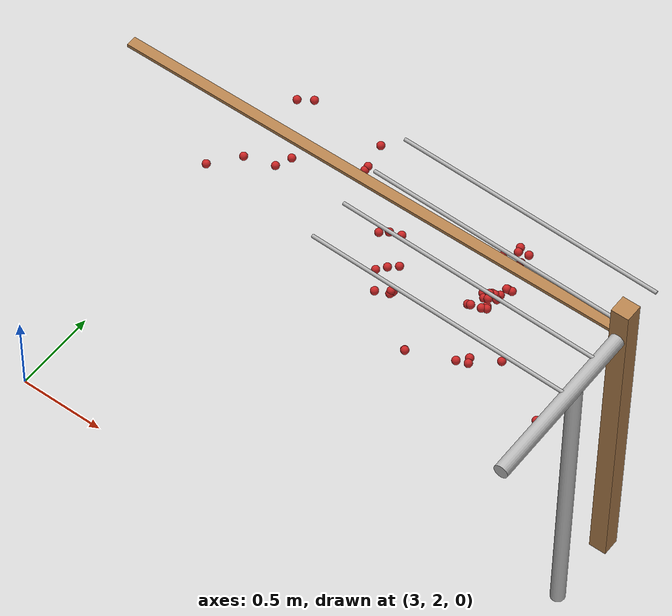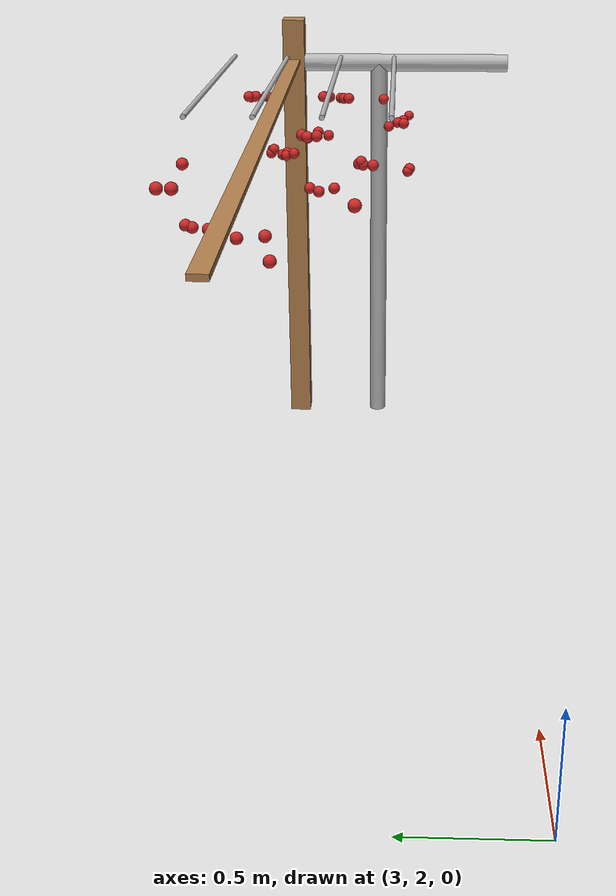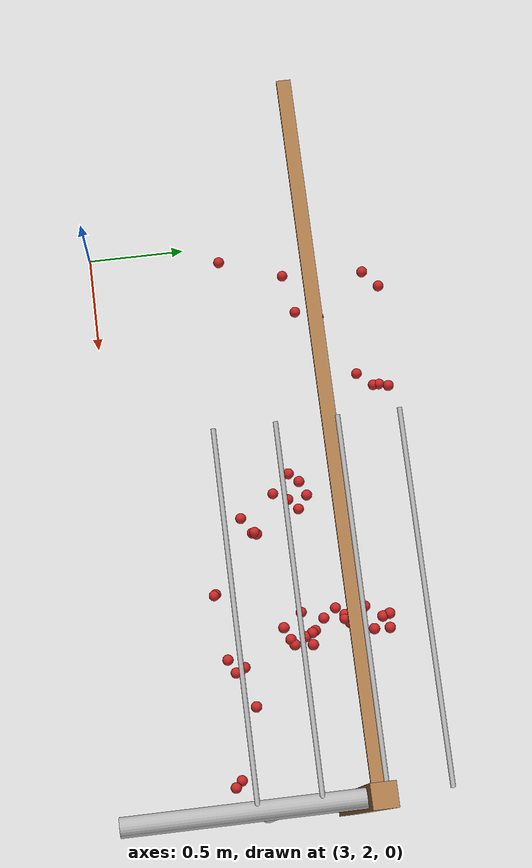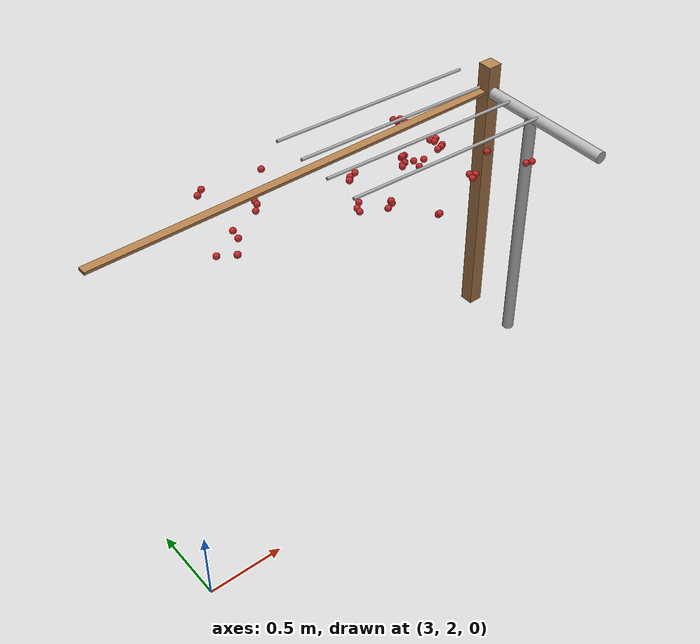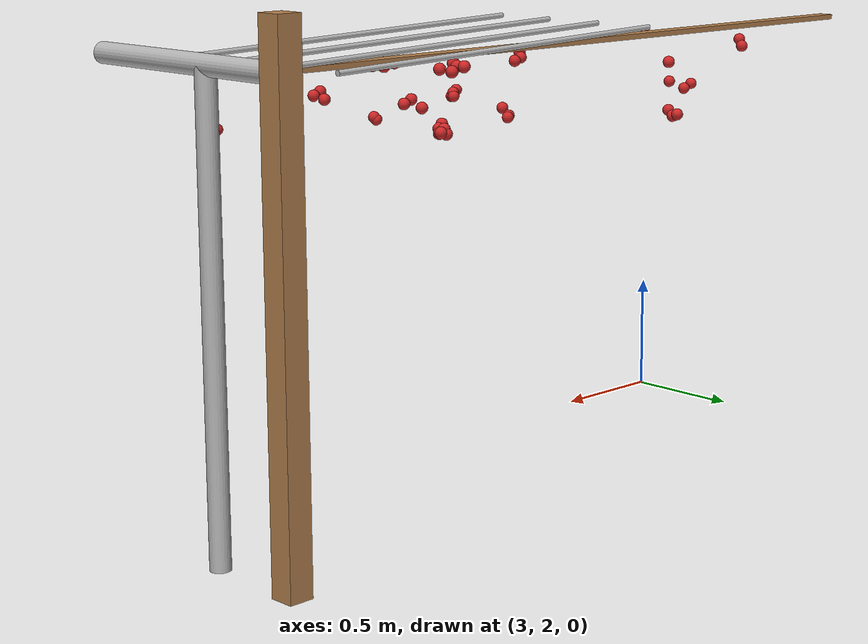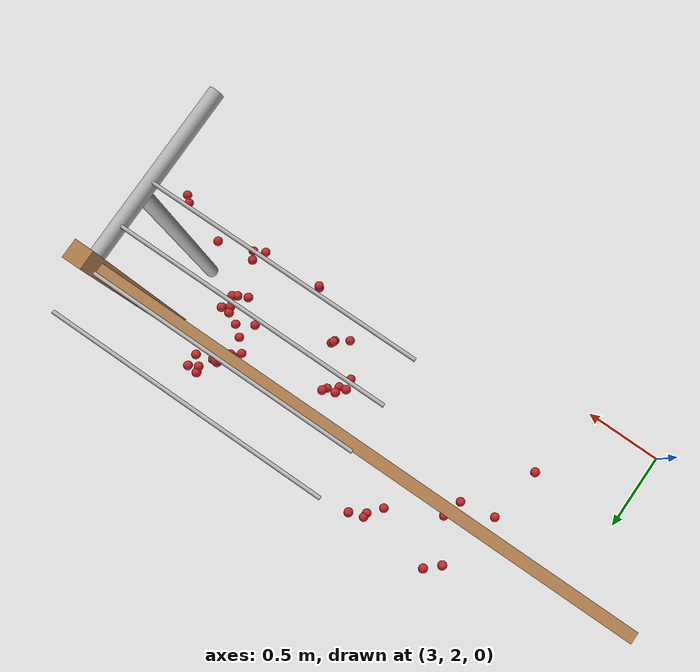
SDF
<sdf version="1.4">
 <model name="pergola">
  <include><name>post_15</name><pose>6.0 3.0 0 0 0 0</pose><uri>model://post</uri></include>
  <link name="beam_9">
   <pose>4.5 3.0 1.81 0 0 0</pose>
   <collision name="collision"><geometry><box><size>3.0 0.06 0.02</size></box></geometry></collision>
   <visual name="visual">
    <geometry><box><size>3.0 0.06 0.02</size></box></geometry>
    <material>
     <script>
      <uri>model://post/materials/scripts</uri>
      <uri>model://post/materials/textures</uri>
      <name>Post/Wood</name>
     </script>
    </material>
   </visual>
   <inertial>
    <mass>5</mass>
    <inertia>
     <ixx>0.0016666666666666668</ixx>
     <ixy>0.0</ixy>
     <ixz>0.0</ixz>
     <iyy>3.7515</iyy>
     <iyz>0.0</iyz>
     <izz>3.750166666666667</izz>
    </inertia>
   </inertial>
  </link>
  <include><name>tree_12</name><pose>6.0 2.6 0 0 0 0</pose><uri>model://tree_trunk</uri></include>
  <link name="baseBranch_12">
   <pose>6.0 2.5 1.8 1.5707963267948966 0 0</pose>
   <collision name="collision">
    <geometry><cylinder><radius>0.04</radius><length>1.0</length></cylinder></geometry>
   </collision>
   <visual name="visual">
    <geometry><cylinder><radius>0.04</radius><length>1.0</length></cylinder></geometry>
    <material>
     <script>
      <uri>model://tree_trunk/materials/scripts</uri>
      <uri>model://tree_trunk/materials/textures</uri>
      <name>Tree/Bark</name>
     </script>
    </material>
   </visual>
   <inertial>
    <mass>10</mass>
    <inertia>
     <ixx>0.8373333333333332</ixx>
     <ixy>0.0</ixy>
     <ixz>0.0</ixz>
     <iyy>0.8373333333333332</iyy>
     <iyz>0.0</iyz>
     <izz>0.008</izz>
    </inertia>
   </inertial>
  </link>
  <link name="vine_61">
   <pose>5.25 2.53 1.85 0 -1.5374753309166493 0</pose>
   <collision name="collision">
    <geometry><cylinder><radius>0.01</radius><length>1.5008331019803633</length></cylinder></geometry>
   </collision>
   <visual name="visual">
    <geometry><cylinder><radius>0.01</radius><length>1.5008331019803633</length></cylinder></geometry>
    <material>
     <script>
      <uri>model://tree_trunk/materials/scripts</uri>
      <uri>model://tree_trunk/materials/textures</uri>
      <name>Tree/Bark</name>
     </script>
    </material>
   </visual>
   <inertial>
    <mass>5</mass>
    <inertia>
     <ixx>0.9386666666666668</ixx>
     <ixy>0.0</ixy>
     <ixz>0.0</ixz>
     <iyy>0.9386666666666668</iyy>
     <iyz>0.0</iyz>
     <izz>0.00025</izz>
    </inertia>
   </inertial>
  </link>
  <link name="vine_63">
   <pose>5.25 2.78 1.85 0 -1.5374753309166493 0</pose>
   <collision name="collision">
    <geometry><cylinder><radius>0.01</radius><length>1.5008331019803633</length></cylinder></geometry>
   </collision>
   <visual name="visual">
    <geometry><cylinder><radius>0.01</radius><length>1.5008331019803633</length></cylinder></geometry>
    <material>
     <script>
      <uri>model://tree_trunk/materials/scripts</uri>
      <uri>model://tree_trunk/materials/textures</uri>
      <name>Tree/Bark</name>
     </script>
    </material>
   </visual>
   <inertial>
    <mass>5</mass>
    <inertia>
     <ixx>0.9386666666666668</ixx>
     <ixy>0.0</ixy>
     <ixz>0.0</ixz>
     <iyy>0.9386666666666668</iyy>
     <iyz>0.0</iyz>
     <izz>0.00025</izz>
    </inertia>
   </inertial>
  </link>
  <link name="vine_65">
   <pose>5.25 3.03 1.85 0 -1.5374753309166493 0</pose>
   <collision name="collision">
    <geometry><cylinder><radius>0.01</radius><length>1.5008331019803633</length></cylinder></geometry>
   </collision>
   <visual name="visual">
    <geometry><cylinder><radius>0.01</radius><length>1.5008331019803633</length></cylinder></geometry>
    <material>
     <script>
      <uri>model://tree_trunk/materials/scripts</uri>
      <uri>model://tree_trunk/materials/textures</uri>
      <name>Tree/Bark</name>
     </script>
    </material>
   </visual>
   <inertial>
    <mass>5</mass>
    <inertia>
     <ixx>0.9386666666666668</ixx>
     <ixy>0.0</ixy>
     <ixz>0.0</ixz>
     <iyy>0.9386666666666668</iyy>
     <iyz>0.0</iyz>
     <izz>0.00025</izz>
    </inertia>
   </inertial>
  </link>
  <link name="vine_67">
   <pose>5.25 3.28 1.85 0 -1.5374753309166493 0</pose>
   <collision name="collision">
    <geometry><cylinder><radius>0.01</radius><length>1.5008331019803633</length></cylinder></geometry>
   </collision>
   <visual name="visual">
    <geometry><cylinder><radius>0.01</radius><length>1.5008331019803633</length></cylinder></geometry>
    <material>
     <script>
      <uri>model://tree_trunk/materials/scripts</uri>
      <uri>model://tree_trunk/materials/textures</uri>
      <name>Tree/Bark</name>
     </script>
    </material>
   </visual>
   <inertial>
    <mass>5</mass>
    <inertia>
     <ixx>0.9386666666666668</ixx>
     <ixy>0.0</ixy>
     <ixz>0.0</ixz>
     <iyy>0.9386666666666668</iyy>
     <iyz>0.0</iyz>
     <izz>0.00025</izz>
    </inertia>
   </inertial>
  </link>
  <link name="fruit_7">
   <pose>5.310056194776669 2.716071899829117 1.7745085929713715 0 0 0</pose>
   <collision name="fruit_collision_7"><geometry><sphere><radius>0.022</radius></sphere></geometry></collision>
   <visual name="visual">
    <geometry><sphere><radius>0.022</radius></sphere></geometry>
    <material><script><name>Gazebo/Red</name></script></material>
   </visual>
   <inertial>
    <mass>0.05</mass>
    <inertia>
     <ixx>9.679999999999999e-06</ixx>
     <ixy>0.0</ixy>
     <ixz>0.0</ixz>
     <iyy>9.679999999999999e-06</iyy>
     <iyz>0.0</iyz>
     <izz>9.679999999999999e-06</izz>
    </inertia>
   </inertial>
   <sensor name="fruit_contact_7" type="contact">
    <plugin name="contact_plugin_7" filename="libcontact_plugin.so"/>
    <contact><collision>fruit_collision_7</collision><topic>fruit_contact_topic_7</topic></contact>
   </sensor>
  </link>
  <link name="fruit_10">
   <pose>4.720756318062982 2.7491571841309956 1.551142887513737 0 0 0</pose>
   <collision name="fruit_collision_10"><geometry><sphere><radius>0.022</radius></sphere></geometry></collision>
   <visual name="visual">
    <geometry><sphere><radius>0.022</radius></sphere></geometry>
    <material><script><name>Gazebo/Red</name></script></material>
   </visual>
   <inertial>
    <mass>0.05</mass>
    <inertia>
     <ixx>9.679999999999999e-06</ixx>
     <ixy>0.0</ixy>
     <ixz>0.0</ixz>
     <iyy>9.679999999999999e-06</iyy>
     <iyz>0.0</iyz>
     <izz>9.679999999999999e-06</izz>
    </inertia>
   </inertial>
   <sensor name="fruit_contact_10" type="contact">
    <plugin name="contact_plugin_10" filename="libcontact_plugin.so"/>
    <contact><collision>fruit_collision_10</collision><topic>fruit_contact_topic_10</topic></contact>
   </sensor>
  </link>
  <link name="fruit_19">
   <pose>5.263690984635094 3.042597183606115 1.783906064949114 0 0 0</pose>
   <collision name="fruit_collision_19"><geometry><sphere><radius>0.022</radius></sphere></geometry></collision>
   <visual name="visual">
    <geometry><sphere><radius>0.022</radius></sphere></geometry>
    <material><script><name>Gazebo/Red</name></script></material>
   </visual>
   <inertial>
    <mass>0.05</mass>
    <inertia>
     <ixx>9.679999999999999e-06</ixx>
     <ixy>0.0</ixy>
     <ixz>0.0</ixz>
     <iyy>9.679999999999999e-06</iyy>
     <iyz>0.0</iyz>
     <izz>9.679999999999999e-06</izz>
    </inertia>
   </inertial>
   <sensor name="fruit_contact_19" type="contact">
    <plugin name="contact_plugin_19" filename="libcontact_plugin.so"/>
    <contact><collision>fruit_collision_19</collision><topic>fruit_contact_topic_19</topic></contact>
   </sensor>
  </link>
  <link name="fruit_28">
   <pose>4.822620042117694 2.602460859145559 1.6158759317331917 0 0 0</pose>
   <collision name="fruit_collision_28"><geometry><sphere><radius>0.022</radius></sphere></geometry></collision>
   <visual name="visual">
    <geometry><sphere><radius>0.022</radius></sphere></geometry>
    <material><script><name>Gazebo/Red</name></script></material>
   </visual>
   <inertial>
    <mass>0.05</mass>
    <inertia>
     <ixx>9.679999999999999e-06</ixx>
     <ixy>0.0</ixy>
     <ixz>0.0</ixz>
     <iyy>9.679999999999999e-06</iyy>
     <iyz>0.0</iyz>
     <izz>9.679999999999999e-06</izz>
    </inertia>
   </inertial>
   <sensor name="fruit_contact_28" type="contact">
    <plugin name="contact_plugin_28" filename="libcontact_plugin.so"/>
    <contact><collision>fruit_collision_28</collision><topic>fruit_contact_topic_28</topic></contact>
   </sensor>
  </link>
  <link name="fruit_62">
   <pose>5.226416432970439 2.9447532875685996 1.5572032718588782 0 0 0</pose>
   <collision name="fruit_collision_62"><geometry><sphere><radius>0.022</radius></sphere></geometry></collision>
   <visual name="visual">
    <geometry><sphere><radius>0.022</radius></sphere></geometry>
    <material><script><name>Gazebo/Red</name></script></material>
   </visual>
   <inertial>
    <mass>0.05</mass>
    <inertia>
     <ixx>9.679999999999999e-06</ixx>
     <ixy>0.0</ixy>
     <ixz>0.0</ixz>
     <iyy>9.679999999999999e-06</iyy>
     <iyz>0.0</iyz>
     <izz>9.679999999999999e-06</izz>
    </inertia>
   </inertial>
   <sensor name="fruit_contact_62" type="contact">
    <plugin name="contact_plugin_62" filename="libcontact_plugin.so"/>
    <contact><collision>fruit_collision_62</collision><topic>fruit_contact_topic_62</topic></contact>
   </sensor>
  </link>
  <link name="fruit_72">
   <pose>4.691600891130706 2.811188774952305 1.7617841134088388 0 0 0</pose>
   <collision name="fruit_collision_72"><geometry><sphere><radius>0.022</radius></sphere></geometry></collision>
   <visual name="visual">
    <geometry><sphere><radius>0.022</radius></sphere></geometry>
    <material><script><name>Gazebo/Red</name></script></material>
   </visual>
   <inertial>
    <mass>0.05</mass>
    <inertia>
     <ixx>9.679999999999999e-06</ixx>
     <ixy>0.0</ixy>
     <ixz>0.0</ixz>
     <iyy>9.679999999999999e-06</iyy>
     <iyz>0.0</iyz>
     <izz>9.679999999999999e-06</izz>
    </inertia>
   </inertial>
   <sensor name="fruit_contact_72" type="contact">
    <plugin name="contact_plugin_72" filename="libcontact_plugin.so"/>
    <contact><collision>fruit_collision_72</collision><topic>fruit_contact_topic_72</topic></contact>
   </sensor>
  </link>
  <link name="fruit_103">
   <pose>5.238014310913283 2.79885047076949 1.6330371551691434 0 0 0</pose>
   <collision name="fruit_collision_103"><geometry><sphere><radius>0.022</radius></sphere></geometry></collision>
   <visual name="visual">
    <geometry><sphere><radius>0.022</radius></sphere></geometry>
    <material><script><name>Gazebo/Red</name></script></material>
   </visual>
   <inertial>
    <mass>0.05</mass>
    <inertia>
     <ixx>9.679999999999999e-06</ixx>
     <ixy>0.0</ixy>
     <ixz>0.0</ixz>
     <iyy>9.679999999999999e-06</iyy>
     <iyz>0.0</iyz>
     <izz>9.679999999999999e-06</izz>
    </inertia>
   </inertial>
   <sensor name="fruit_contact_103" type="contact">
    <plugin name="contact_plugin_103" filename="libcontact_plugin.so"/>
    <contact><collision>fruit_collision_103</collision><topic>fruit_contact_topic_103</topic></contact>
   </sensor>
  </link>
  <link name="fruit_109">
   <pose>3.880243382284092 3.2193864037321402 1.7860987356283933 0 0 0</pose>
   <collision name="fruit_collision_109"><geometry><sphere><radius>0.022</radius></sphere></geometry></collision>
   <visual name="visual">
    <geometry><sphere><radius>0.022</radius></sphere></geometry>
    <material><script><name>Gazebo/Red</name></script></material>
   </visual>
   <inertial>
    <mass>0.05</mass>
    <inertia>
     <ixx>9.679999999999999e-06</ixx>
     <ixy>0.0</ixy>
     <ixz>0.0</ixz>
     <iyy>9.679999999999999e-06</iyy>
     <iyz>0.0</iyz>
     <izz>9.679999999999999e-06</izz>
    </inertia>
   </inertial>
   <sensor name="fruit_contact_109" type="contact">
    <plugin name="contact_plugin_109" filename="libcontact_plugin.so"/>
    <contact><collision>fruit_collision_109</collision><topic>fruit_contact_topic_109</topic></contact>
   </sensor>
  </link>
  <link name="fruit_110">
   <pose>5.396791758302506 2.4828366591025923 1.6486892742449508 0 0 0</pose>
   <collision name="fruit_collision_110"><geometry><sphere><radius>0.022</radius></sphere></geometry></collision>
   <visual name="visual">
    <geometry><sphere><radius>0.022</radius></sphere></geometry>
    <material><script><name>Gazebo/Red</name></script></material>
   </visual>
   <inertial>
    <mass>0.05</mass>
    <inertia>
     <ixx>9.679999999999999e-06</ixx>
     <ixy>0.0</ixy>
     <ixz>0.0</ixz>
     <iyy>9.679999999999999e-06</iyy>
     <iyz>0.0</iyz>
     <izz>9.679999999999999e-06</izz>
    </inertia>
   </inertial>
   <sensor name="fruit_contact_110" type="contact">
    <plugin name="contact_plugin_110" filename="libcontact_plugin.so"/>
    <contact><collision>fruit_collision_110</collision><topic>fruit_contact_topic_110</topic></contact>
   </sensor>
  </link>
  <link name="fruit_118">
   <pose>4.240601683592925 3.1665870681076083 1.536878968741413 0 0 0</pose>
   <collision name="fruit_collision_118"><geometry><sphere><radius>0.022</radius></sphere></geometry></collision>
   <visual name="visual">
    <geometry><sphere><radius>0.022</radius></sphere></geometry>
    <material><script><name>Gazebo/Red</name></script></material>
   </visual>
   <inertial>
    <mass>0.05</mass>
    <inertia>
     <ixx>9.679999999999999e-06</ixx>
     <ixy>0.0</ixy>
     <ixz>0.0</ixz>
     <iyy>9.679999999999999e-06</iyy>
     <iyz>0.0</iyz>
     <izz>9.679999999999999e-06</izz>
    </inertia>
   </inertial>
   <sensor name="fruit_contact_118" type="contact">
    <plugin name="contact_plugin_118" filename="libcontact_plugin.so"/>
    <contact><collision>fruit_collision_118</collision><topic>fruit_contact_topic_118</topic></contact>
   </sensor>
  </link>
  <link name="fruit_121">
   <pose>3.9603385510509983 2.9360979225763786 1.6048226936220926 0 0 0</pose>
   <collision name="fruit_collision_121"><geometry><sphere><radius>0.022</radius></sphere></geometry></collision>
   <visual name="visual">
    <geometry><sphere><radius>0.022</radius></sphere></geometry>
    <material><script><name>Gazebo/Red</name></script></material>
   </visual>
   <inertial>
    <mass>0.05</mass>
    <inertia>
     <ixx>9.679999999999999e-06</ixx>
     <ixy>0.0</ixy>
     <ixz>0.0</ixz>
     <iyy>9.679999999999999e-06</iyy>
     <iyz>0.0</iyz>
     <izz>9.679999999999999e-06</izz>
    </inertia>
   </inertial>
   <sensor name="fruit_contact_121" type="contact">
    <plugin name="contact_plugin_121" filename="libcontact_plugin.so"/>
    <contact><collision>fruit_collision_121</collision><topic>fruit_contact_topic_121</topic></contact>
   </sensor>
  </link>
  <link name="fruit_131">
   <pose>4.364439687496429 3.267103218653195 1.737242778188225 0 0 0</pose>
   <collision name="fruit_collision_131"><geometry><sphere><radius>0.022</radius></sphere></geometry></collision>
   <visual name="visual">
    <geometry><sphere><radius>0.022</radius></sphere></geometry>
    <material><script><name>Gazebo/Red</name></script></material>
   </visual>
   <inertial>
    <mass>0.05</mass>
    <inertia>
     <ixx>9.679999999999999e-06</ixx>
     <ixy>0.0</ixy>
     <ixz>0.0</ixz>
     <iyy>9.679999999999999e-06</iyy>
     <iyz>0.0</iyz>
     <izz>9.679999999999999e-06</izz>
    </inertia>
   </inertial>
   <sensor name="fruit_contact_131" type="contact">
    <plugin name="contact_plugin_131" filename="libcontact_plugin.so"/>
    <contact><collision>fruit_collision_131</collision><topic>fruit_contact_topic_131</topic></contact>
   </sensor>
  </link>
  <link name="fruit_134">
   <pose>5.599396539561008 2.5730942747967958 1.710823450412586 0 0 0</pose>
   <collision name="fruit_collision_134"><geometry><sphere><radius>0.022</radius></sphere></geometry></collision>
   <visual name="visual">
    <geometry><sphere><radius>0.022</radius></sphere></geometry>
    <material><script><name>Gazebo/Red</name></script></material>
   </visual>
   <inertial>
    <mass>0.05</mass>
    <inertia>
     <ixx>9.679999999999999e-06</ixx>
     <ixy>0.0</ixy>
     <ixz>0.0</ixz>
     <iyy>9.679999999999999e-06</iyy>
     <iyz>0.0</iyz>
     <izz>9.679999999999999e-06</izz>
    </inertia>
   </inertial>
   <sensor name="fruit_contact_134" type="contact">
    <plugin name="contact_plugin_134" filename="libcontact_plugin.so"/>
    <contact><collision>fruit_collision_134</collision><topic>fruit_contact_topic_134</topic></contact>
   </sensor>
  </link>
  <link name="fruit_164">
   <pose>5.317874525641369 2.847077839039408 1.6280620795540357 0 0 0</pose>
   <collision name="fruit_collision_164"><geometry><sphere><radius>0.022</radius></sphere></geometry></collision>
   <visual name="visual">
    <geometry><sphere><radius>0.022</radius></sphere></geometry>
    <material><script><name>Gazebo/Red</name></script></material>
   </visual>
   <inertial>
    <mass>0.05</mass>
    <inertia>
     <ixx>9.679999999999999e-06</ixx>
     <ixy>0.0</ixy>
     <ixz>0.0</ixz>
     <iyy>9.679999999999999e-06</iyy>
     <iyz>0.0</iyz>
     <izz>9.679999999999999e-06</izz>
    </inertia>
   </inertial>
   <sensor name="fruit_contact_164" type="contact">
    <plugin name="contact_plugin_164" filename="libcontact_plugin.so"/>
    <contact><collision>fruit_collision_164</collision><topic>fruit_contact_topic_164</topic></contact>
   </sensor>
  </link>
  <link name="fruit_185">
   <pose>5.302775911525276 3.036562416127382 1.5552973422926701 0 0 0</pose>
   <collision name="fruit_collision_185"><geometry><sphere><radius>0.022</radius></sphere></geometry></collision>
   <visual name="visual">
    <geometry><sphere><radius>0.022</radius></sphere></geometry>
    <material><script><name>Gazebo/Red</name></script></material>
   </visual>
   <inertial>
    <mass>0.05</mass>
    <inertia>
     <ixx>9.679999999999999e-06</ixx>
     <ixy>0.0</ixy>
     <ixz>0.0</ixz>
     <iyy>9.679999999999999e-06</iyy>
     <iyz>0.0</iyz>
     <izz>9.679999999999999e-06</izz>
    </inertia>
   </inertial>
   <sensor name="fruit_contact_185" type="contact">
    <plugin name="contact_plugin_185" filename="libcontact_plugin.so"/>
    <contact><collision>fruit_collision_185</collision><topic>fruit_contact_topic_185</topic></contact>
   </sensor>
  </link>
  <link name="fruit_190">
   <pose>4.792861836305501 2.8484947354084476 1.5307977857727029 0 0 0</pose>
   <collision name="fruit_collision_190"><geometry><sphere><radius>0.022</radius></sphere></geometry></collision>
   <visual name="visual">
    <geometry><sphere><radius>0.022</radius></sphere></geometry>
    <material><script><name>Gazebo/Red</name></script></material>
   </visual>
   <inertial>
    <mass>0.05</mass>
    <inertia>
     <ixx>9.679999999999999e-06</ixx>
     <ixy>0.0</ixy>
     <ixz>0.0</ixz>
     <iyy>9.679999999999999e-06</iyy>
     <iyz>0.0</iyz>
     <izz>9.679999999999999e-06</izz>
    </inertia>
   </inertial>
   <sensor name="fruit_contact_190" type="contact">
    <plugin name="contact_plugin_190" filename="libcontact_plugin.so"/>
    <contact><collision>fruit_collision_190</collision><topic>fruit_contact_topic_190</topic></contact>
   </sensor>
  </link>
  <link name="fruit_194">
   <pose>5.291805537602034 2.9994950234278885 1.5352478592965382 0 0 0</pose>
   <collision name="fruit_collision_194"><geometry><sphere><radius>0.022</radius></sphere></geometry></collision>
   <visual name="visual">
    <geometry><sphere><radius>0.022</radius></sphere></geometry>
    <material><script><name>Gazebo/Red</name></script></material>
   </visual>
   <inertial>
    <mass>0.05</mass>
    <inertia>
     <ixx>9.679999999999999e-06</ixx>
     <ixy>0.0</ixy>
     <ixz>0.0</ixz>
     <iyy>9.679999999999999e-06</iyy>
     <iyz>0.0</iyz>
     <izz>9.679999999999999e-06</izz>
    </inertia>
   </inertial>
   <sensor name="fruit_contact_194" type="contact">
    <plugin name="contact_plugin_194" filename="libcontact_plugin.so"/>
    <contact><collision>fruit_collision_194</collision><topic>fruit_contact_topic_194</topic></contact>
   </sensor>
  </link>
  <link name="fruit_199">
   <pose>5.871536436383011 2.483816045851661 1.5558065760525757 0 0 0</pose>
   <collision name="fruit_collision_199"><geometry><sphere><radius>0.022</radius></sphere></geometry></collision>
   <visual name="visual">
    <geometry><sphere><radius>0.022</radius></sphere></geometry>
    <material><script><name>Gazebo/Red</name></script></material>
   </visual>
   <inertial>
    <mass>0.05</mass>
    <inertia>
     <ixx>9.679999999999999e-06</ixx>
     <ixy>0.0</ixy>
     <ixz>0.0</ixz>
     <iyy>9.679999999999999e-06</iyy>
     <iyz>0.0</iyz>
     <izz>9.679999999999999e-06</izz>
    </inertia>
   </inertial>
   <sensor name="fruit_contact_199" type="contact">
    <plugin name="contact_plugin_199" filename="libcontact_plugin.so"/>
    <contact><collision>fruit_collision_199</collision><topic>fruit_contact_topic_199</topic></contact>
   </sensor>
  </link>
  <link name="fruit_200">
   <pose>4.748074316985864 2.8102062385526025 1.5297393083257336 0 0 0</pose>
   <collision name="fruit_collision_200"><geometry><sphere><radius>0.022</radius></sphere></geometry></collision>
   <visual name="visual">
    <geometry><sphere><radius>0.022</radius></sphere></geometry>
    <material><script><name>Gazebo/Red</name></script></material>
   </visual>
   <inertial>
    <mass>0.05</mass>
    <inertia>
     <ixx>9.679999999999999e-06</ixx>
     <ixy>0.0</ixy>
     <ixz>0.0</ixz>
     <iyy>9.679999999999999e-06</iyy>
     <iyz>0.0</iyz>
     <izz>9.679999999999999e-06</izz>
    </inertia>
   </inertial>
   <sensor name="fruit_contact_200" type="contact">
    <plugin name="contact_plugin_200" filename="libcontact_plugin.so"/>
    <contact><collision>fruit_collision_200</collision><topic>fruit_contact_topic_200</topic></contact>
   </sensor>
  </link>
  <link name="fruit_209">
   <pose>3.784397428421382 2.9040283665213384 1.5793116071352606 0 0 0</pose>
   <collision name="fruit_collision_209"><geometry><sphere><radius>0.022</radius></sphere></geometry></collision>
   <visual name="visual">
    <geometry><sphere><radius>0.022</radius></sphere></geometry>
    <material><script><name>Gazebo/Red</name></script></material>
   </visual>
   <inertial>
    <mass>0.05</mass>
    <inertia>
     <ixx>9.679999999999999e-06</ixx>
     <ixy>0.0</ixy>
     <ixz>0.0</ixz>
     <iyy>9.679999999999999e-06</iyy>
     <iyz>0.0</iyz>
     <izz>9.679999999999999e-06</izz>
    </inertia>
   </inertial>
   <sensor name="fruit_contact_209" type="contact">
    <plugin name="contact_plugin_209" filename="libcontact_plugin.so"/>
    <contact><collision>fruit_collision_209</collision><topic>fruit_contact_topic_209</topic></contact>
   </sensor>
  </link>
  <link name="fruit_229">
   <pose>5.380286222599372 2.7520339911911273 1.7610701405919564 0 0 0</pose>
   <collision name="fruit_collision_229"><geometry><sphere><radius>0.022</radius></sphere></geometry></collision>
   <visual name="visual">
    <geometry><sphere><radius>0.022</radius></sphere></geometry>
    <material><script><name>Gazebo/Red</name></script></material>
   </visual>
   <inertial>
    <mass>0.05</mass>
    <inertia>
     <ixx>9.679999999999999e-06</ixx>
     <ixy>0.0</ixy>
     <ixz>0.0</ixz>
     <iyy>9.679999999999999e-06</iyy>
     <iyz>0.0</iyz>
     <izz>9.679999999999999e-06</izz>
    </inertia>
   </inertial>
   <sensor name="fruit_contact_229" type="contact">
    <plugin name="contact_plugin_229" filename="libcontact_plugin.so"/>
    <contact><collision>fruit_collision_229</collision><topic>fruit_contact_topic_229</topic></contact>
   </sensor>
  </link>
  <link name="fruit_242">
   <pose>5.272971332526434 2.9776495994654777 1.5484621272415617 0 0 0</pose>
   <collision name="fruit_collision_242"><geometry><sphere><radius>0.022</radius></sphere></geometry></collision>
   <visual name="visual">
    <geometry><sphere><radius>0.022</radius></sphere></geometry>
    <material><script><name>Gazebo/Red</name></script></material>
   </visual>
   <inertial>
    <mass>0.05</mass>
    <inertia>
     <ixx>9.679999999999999e-06</ixx>
     <ixy>0.0</ixy>
     <ixz>0.0</ixz>
     <iyy>9.679999999999999e-06</iyy>
     <iyz>0.0</iyz>
     <izz>9.679999999999999e-06</izz>
    </inertia>
   </inertial>
   <sensor name="fruit_contact_242" type="contact">
    <plugin name="contact_plugin_242" filename="libcontact_plugin.so"/>
    <contact><collision>fruit_collision_242</collision><topic>fruit_contact_topic_242</topic></contact>
   </sensor>
  </link>
  <link name="fruit_256">
   <pose>4.783436596513821 2.875062084803756 1.7433912802366311 0 0 0</pose>
   <collision name="fruit_collision_256"><geometry><sphere><radius>0.022</radius></sphere></geometry></collision>
   <visual name="visual">
    <geometry><sphere><radius>0.022</radius></sphere></geometry>
    <material><script><name>Gazebo/Red</name></script></material>
   </visual>
   <inertial>
    <mass>0.05</mass>
    <inertia>
     <ixx>9.679999999999999e-06</ixx>
     <ixy>0.0</ixy>
     <ixz>0.0</ixz>
     <iyy>9.679999999999999e-06</iyy>
     <iyz>0.0</iyz>
     <izz>9.679999999999999e-06</izz>
    </inertia>
   </inertial>
   <sensor name="fruit_contact_256" type="contact">
    <plugin name="contact_plugin_256" filename="libcontact_plugin.so"/>
    <contact><collision>fruit_collision_256</collision><topic>fruit_contact_topic_256</topic></contact>
   </sensor>
  </link>
  <link name="fruit_262">
   <pose>4.885564875710787 2.642961889764723 1.6007752074218475 0 0 0</pose>
   <collision name="fruit_collision_262"><geometry><sphere><radius>0.022</radius></sphere></geometry></collision>
   <visual name="visual">
    <geometry><sphere><radius>0.022</radius></sphere></geometry>
    <material><script><name>Gazebo/Red</name></script></material>
   </visual>
   <inertial>
    <mass>0.05</mass>
    <inertia>
     <ixx>9.679999999999999e-06</ixx>
     <ixy>0.0</ixy>
     <ixz>0.0</ixz>
     <iyy>9.679999999999999e-06</iyy>
     <iyz>0.0</iyz>
     <izz>9.679999999999999e-06</izz>
    </inertia>
   </inertial>
   <sensor name="fruit_contact_262" type="contact">
    <plugin name="contact_plugin_262" filename="libcontact_plugin.so"/>
    <contact><collision>fruit_collision_262</collision><topic>fruit_contact_topic_262</topic></contact>
   </sensor>
  </link>
  <link name="fruit_279">
   <pose>4.294405447525719 3.2317779121280577 1.5252249771789512 0 0 0</pose>
   <collision name="fruit_collision_279"><geometry><sphere><radius>0.022</radius></sphere></geometry></collision>
   <visual name="visual">
    <geometry><sphere><radius>0.022</radius></sphere></geometry>
    <material><script><name>Gazebo/Red</name></script></material>
   </visual>
   <inertial>
    <mass>0.05</mass>
    <inertia>
     <ixx>9.679999999999999e-06</ixx>
     <ixy>0.0</ixy>
     <ixz>0.0</ixz>
     <iyy>9.679999999999999e-06</iyy>
     <iyz>0.0</iyz>
     <izz>9.679999999999999e-06</izz>
    </inertia>
   </inertial>
   <sensor name="fruit_contact_279" type="contact">
    <plugin name="contact_plugin_279" filename="libcontact_plugin.so"/>
    <contact><collision>fruit_collision_279</collision><topic>fruit_contact_topic_279</topic></contact>
   </sensor>
  </link>
  <link name="fruit_280">
   <pose>5.354516771319723 2.798243314818788 1.770972884949798 0 0 0</pose>
   <collision name="fruit_collision_280"><geometry><sphere><radius>0.022</radius></sphere></geometry></collision>
   <visual name="visual">
    <geometry><sphere><radius>0.022</radius></sphere></geometry>
    <material><script><name>Gazebo/Red</name></script></material>
   </visual>
   <inertial>
    <mass>0.05</mass>
    <inertia>
     <ixx>9.679999999999999e-06</ixx>
     <ixy>0.0</ixy>
     <ixz>0.0</ixz>
     <iyy>9.679999999999999e-06</iyy>
     <iyz>0.0</iyz>
     <izz>9.679999999999999e-06</izz>
    </inertia>
   </inertial>
   <sensor name="fruit_contact_280" type="contact">
    <plugin name="contact_plugin_280" filename="libcontact_plugin.so"/>
    <contact><collision>fruit_collision_280</collision><topic>fruit_contact_topic_280</topic></contact>
   </sensor>
  </link>
  <link name="fruit_303">
   <pose>4.885964563404338 2.6512762595985877 1.6141788420155492 0 0 0</pose>
   <collision name="fruit_collision_303"><geometry><sphere><radius>0.022</radius></sphere></geometry></collision>
   <visual name="visual">
    <geometry><sphere><radius>0.022</radius></sphere></geometry>
    <material><script><name>Gazebo/Red</name></script></material>
   </visual>
   <inertial>
    <mass>0.05</mass>
    <inertia>
     <ixx>9.679999999999999e-06</ixx>
     <ixy>0.0</ixy>
     <ixz>0.0</ixz>
     <iyy>9.679999999999999e-06</iyy>
     <iyz>0.0</iyz>
     <izz>9.679999999999999e-06</izz>
    </inertia>
   </inertial>
   <sensor name="fruit_contact_303" type="contact">
    <plugin name="contact_plugin_303" filename="libcontact_plugin.so"/>
    <contact><collision>fruit_collision_303</collision><topic>fruit_contact_topic_303</topic></contact>
   </sensor>
  </link>
  <link name="fruit_319">
   <pose>5.388810869032847 2.8232499132532087 1.76474250699272 0 0 0</pose>
   <collision name="fruit_collision_319"><geometry><sphere><radius>0.022</radius></sphere></geometry></collision>
   <visual name="visual">
    <geometry><sphere><radius>0.022</radius></sphere></geometry>
    <material><script><name>Gazebo/Red</name></script></material>
   </visual>
   <inertial>
    <mass>0.05</mass>
    <inertia>
     <ixx>9.679999999999999e-06</ixx>
     <ixy>0.0</ixy>
     <ixz>0.0</ixz>
     <iyy>9.679999999999999e-06</iyy>
     <iyz>0.0</iyz>
     <izz>9.679999999999999e-06</izz>
    </inertia>
   </inertial>
   <sensor name="fruit_contact_319" type="contact">
    <plugin name="contact_plugin_319" filename="libcontact_plugin.so"/>
    <contact><collision>fruit_collision_319</collision><topic>fruit_contact_topic_319</topic></contact>
   </sensor>
  </link>
  <link name="fruit_326">
   <pose>4.296333329984856 3.2560162427390638 1.533025361442751 0 0 0</pose>
   <collision name="fruit_collision_326"><geometry><sphere><radius>0.022</radius></sphere></geometry></collision>
   <visual name="visual">
    <geometry><sphere><radius>0.022</radius></sphere></geometry>
    <material><script><name>Gazebo/Red</name></script></material>
   </visual>
   <inertial>
    <mass>0.05</mass>
    <inertia>
     <ixx>9.679999999999999e-06</ixx>
     <ixy>0.0</ixy>
     <ixz>0.0</ixz>
     <iyy>9.679999999999999e-06</iyy>
     <iyz>0.0</iyz>
     <izz>9.679999999999999e-06</izz>
    </inertia>
   </inertial>
   <sensor name="fruit_contact_326" type="contact">
    <plugin name="contact_plugin_326" filename="libcontact_plugin.so"/>
    <contact><collision>fruit_collision_326</collision><topic>fruit_contact_topic_326</topic></contact>
   </sensor>
  </link>
  <link name="fruit_333">
   <pose>5.342808331140936 2.8254023601081797 1.7738748204495298 0 0 0</pose>
   <collision name="fruit_collision_333"><geometry><sphere><radius>0.022</radius></sphere></geometry></collision>
   <visual name="visual">
    <geometry><sphere><radius>0.022</radius></sphere></geometry>
    <material><script><name>Gazebo/Red</name></script></material>
   </visual>
   <inertial>
    <mass>0.05</mass>
    <inertia>
     <ixx>9.679999999999999e-06</ixx>
     <ixy>0.0</ixy>
     <ixz>0.0</ixz>
     <iyy>9.679999999999999e-06</iyy>
     <iyz>0.0</iyz>
     <izz>9.679999999999999e-06</izz>
    </inertia>
   </inertial>
   <sensor name="fruit_contact_333" type="contact">
    <plugin name="contact_plugin_333" filename="libcontact_plugin.so"/>
    <contact><collision>fruit_collision_333</collision><topic>fruit_contact_topic_333</topic></contact>
   </sensor>
  </link>
  <link name="fruit_337">
   <pose>3.942713152344793 3.2805261647074797 1.7679426574480084 0 0 0</pose>
   <collision name="fruit_collision_337"><geometry><sphere><radius>0.022</radius></sphere></geometry></collision>
   <visual name="visual">
    <geometry><sphere><radius>0.022</radius></sphere></geometry>
    <material><script><name>Gazebo/Red</name></script></material>
   </visual>
   <inertial>
    <mass>0.05</mass>
    <inertia>
     <ixx>9.679999999999999e-06</ixx>
     <ixy>0.0</ixy>
     <ixz>0.0</ixz>
     <iyy>9.679999999999999e-06</iyy>
     <iyz>0.0</iyz>
     <izz>9.679999999999999e-06</izz>
    </inertia>
   </inertial>
   <sensor name="fruit_contact_337" type="contact">
    <plugin name="contact_plugin_337" filename="libcontact_plugin.so"/>
    <contact><collision>fruit_collision_337</collision><topic>fruit_contact_topic_337</topic></contact>
   </sensor>
  </link>
  <link name="fruit_342">
   <pose>5.113863335020957 2.45802924190406 1.525651269859572 0 0 0</pose>
   <collision name="fruit_collision_342"><geometry><sphere><radius>0.022</radius></sphere></geometry></collision>
   <visual name="visual">
    <geometry><sphere><radius>0.022</radius></sphere></geometry>
    <material><script><name>Gazebo/Red</name></script></material>
   </visual>
   <inertial>
    <mass>0.05</mass>
    <inertia>
     <ixx>9.679999999999999e-06</ixx>
     <ixy>0.0</ixy>
     <ixz>0.0</ixz>
     <iyy>9.679999999999999e-06</iyy>
     <iyz>0.0</iyz>
     <izz>9.679999999999999e-06</izz>
    </inertia>
   </inertial>
   <sensor name="fruit_contact_342" type="contact">
    <plugin name="contact_plugin_342" filename="libcontact_plugin.so"/>
    <contact><collision>fruit_collision_342</collision><topic>fruit_contact_topic_342</topic></contact>
   </sensor>
  </link>
  <link name="fruit_348">
   <pose>5.3554902383341325 3.0700400046705387 1.771865526550194 0 0 0</pose>
   <collision name="fruit_collision_348"><geometry><sphere><radius>0.022</radius></sphere></geometry></collision>
   <visual name="visual">
    <geometry><sphere><radius>0.022</radius></sphere></geometry>
    <material><script><name>Gazebo/Red</name></script></material>
   </visual>
   <inertial>
    <mass>0.05</mass>
    <inertia>
     <ixx>9.679999999999999e-06</ixx>
     <ixy>0.0</ixy>
     <ixz>0.0</ixz>
     <iyy>9.679999999999999e-06</iyy>
     <iyz>0.0</iyz>
     <izz>9.679999999999999e-06</izz>
    </inertia>
   </inertial>
   <sensor name="fruit_contact_348" type="contact">
    <plugin name="contact_plugin_348" filename="libcontact_plugin.so"/>
    <contact><collision>fruit_collision_348</collision><topic>fruit_contact_topic_348</topic></contact>
   </sensor>
  </link>
  <link name="fruit_354">
   <pose>5.107850060356283 2.4646885384138586 1.516336472678942 0 0 0</pose>
   <collision name="fruit_collision_354"><geometry><sphere><radius>0.022</radius></sphere></geometry></collision>
   <visual name="visual">
    <geometry><sphere><radius>0.022</radius></sphere></geometry>
    <material><script><name>Gazebo/Red</name></script></material>
   </visual>
   <inertial>
    <mass>0.05</mass>
    <inertia>
     <ixx>9.679999999999999e-06</ixx>
     <ixy>0.0</ixy>
     <ixz>0.0</ixz>
     <iyy>9.679999999999999e-06</iyy>
     <iyz>0.0</iyz>
     <izz>9.679999999999999e-06</izz>
    </inertia>
   </inertial>
   <sensor name="fruit_contact_354" type="contact">
    <plugin name="contact_plugin_354" filename="libcontact_plugin.so"/>
    <contact><collision>fruit_collision_354</collision><topic>fruit_contact_topic_354</topic></contact>
   </sensor>
  </link>
  <link name="fruit_363">
   <pose>5.310838008755683 3.1088090185744197 1.7808375835917158 0 0 0</pose>
   <collision name="fruit_collision_363"><geometry><sphere><radius>0.022</radius></sphere></geometry></collision>
   <visual name="visual">
    <geometry><sphere><radius>0.022</radius></sphere></geometry>
    <material><script><name>Gazebo/Red</name></script></material>
   </visual>
   <inertial>
    <mass>0.05</mass>
    <inertia>
     <ixx>9.679999999999999e-06</ixx>
     <ixy>0.0</ixy>
     <ixz>0.0</ixz>
     <iyy>9.679999999999999e-06</iyy>
     <iyz>0.0</iyz>
     <izz>9.679999999999999e-06</izz>
    </inertia>
   </inertial>
   <sensor name="fruit_contact_363" type="contact">
    <plugin name="contact_plugin_363" filename="libcontact_plugin.so"/>
    <contact><collision>fruit_collision_363</collision><topic>fruit_contact_topic_363</topic></contact>
   </sensor>
  </link>
  <link name="fruit_374">
   <pose>5.302870857195816 3.0485695879174246 1.5387802981217253 0 0 0</pose>
   <collision name="fruit_collision_374"><geometry><sphere><radius>0.022</radius></sphere></geometry></collision>
   <visual name="visual">
    <geometry><sphere><radius>0.022</radius></sphere></geometry>
    <material><script><name>Gazebo/Red</name></script></material>
   </visual>
   <inertial>
    <mass>0.05</mass>
    <inertia>
     <ixx>9.679999999999999e-06</ixx>
     <ixy>0.0</ixy>
     <ixz>0.0</ixz>
     <iyy>9.679999999999999e-06</iyy>
     <iyz>0.0</iyz>
     <izz>9.679999999999999e-06</izz>
    </inertia>
   </inertial>
   <sensor name="fruit_contact_374" type="contact">
    <plugin name="contact_plugin_374" filename="libcontact_plugin.so"/>
    <contact><collision>fruit_collision_374</collision><topic>fruit_contact_topic_374</topic></contact>
   </sensor>
  </link>
  <link name="fruit_379">
   <pose>5.269652894532729 2.8882478316489237 1.613193121457412 0 0 0</pose>
   <collision name="fruit_collision_379"><geometry><sphere><radius>0.022</radius></sphere></geometry></collision>
   <visual name="visual">
    <geometry><sphere><radius>0.022</radius></sphere></geometry>
    <material><script><name>Gazebo/Red</name></script></material>
   </visual>
   <inertial>
    <mass>0.05</mass>
    <inertia>
     <ixx>9.679999999999999e-06</ixx>
     <ixy>0.0</ixy>
     <ixz>0.0</ixz>
     <iyy>9.679999999999999e-06</iyy>
     <iyz>0.0</iyz>
     <izz>9.679999999999999e-06</izz>
    </inertia>
   </inertial>
   <sensor name="fruit_contact_379" type="contact">
    <plugin name="contact_plugin_379" filename="libcontact_plugin.so"/>
    <contact><collision>fruit_collision_379</collision><topic>fruit_contact_topic_379</topic></contact>
   </sensor>
  </link>
  <link name="fruit_412">
   <pose>3.98730735695401 3.033770573670698 1.587909421323236 0 0 0</pose>
   <collision name="fruit_collision_412"><geometry><sphere><radius>0.022</radius></sphere></geometry></collision>
   <visual name="visual">
    <geometry><sphere><radius>0.022</radius></sphere></geometry>
    <material><script><name>Gazebo/Red</name></script></material>
   </visual>
   <inertial>
    <mass>0.05</mass>
    <inertia>
     <ixx>9.679999999999999e-06</ixx>
     <ixy>0.0</ixy>
     <ixz>0.0</ixz>
     <iyy>9.679999999999999e-06</iyy>
     <iyz>0.0</iyz>
     <izz>9.679999999999999e-06</izz>
    </inertia>
   </inertial>
   <sensor name="fruit_contact_412" type="contact">
    <plugin name="contact_plugin_412" filename="libcontact_plugin.so"/>
    <contact><collision>fruit_collision_412</collision><topic>fruit_contact_topic_412</topic></contact>
   </sensor>
  </link>
  <link name="fruit_413">
   <pose>5.3285732348949075 3.0462464291927303 1.545742758737004 0 0 0</pose>
   <collision name="fruit_collision_413"><geometry><sphere><radius>0.022</radius></sphere></geometry></collision>
   <visual name="visual">
    <geometry><sphere><radius>0.022</radius></sphere></geometry>
    <material><script><name>Gazebo/Red</name></script></material>
   </visual>
   <inertial>
    <mass>0.05</mass>
    <inertia>
     <ixx>9.679999999999999e-06</ixx>
     <ixy>0.0</ixy>
     <ixz>0.0</ixz>
     <iyy>9.679999999999999e-06</iyy>
     <iyz>0.0</iyz>
     <izz>9.679999999999999e-06</izz>
    </inertia>
   </inertial>
   <sensor name="fruit_contact_413" type="contact">
    <plugin name="contact_plugin_413" filename="libcontact_plugin.so"/>
    <contact><collision>fruit_collision_413</collision><topic>fruit_contact_topic_413</topic></contact>
   </sensor>
  </link>
  <link name="fruit_424">
   <pose>5.3572350740831896 3.1327563405760803 1.7675961560480586 0 0 0</pose>
   <collision name="fruit_collision_424"><geometry><sphere><radius>0.022</radius></sphere></geometry></collision>
   <visual name="visual">
    <geometry><sphere><radius>0.022</radius></sphere></geometry>
    <material><script><name>Gazebo/Red</name></script></material>
   </visual>
   <inertial>
    <mass>0.05</mass>
    <inertia>
     <ixx>9.679999999999999e-06</ixx>
     <ixy>0.0</ixy>
     <ixz>0.0</ixz>
     <iyy>9.679999999999999e-06</iyy>
     <iyz>0.0</iyz>
     <izz>9.679999999999999e-06</izz>
    </inertia>
   </inertial>
   <sensor name="fruit_contact_424" type="contact">
    <plugin name="contact_plugin_424" filename="libcontact_plugin.so"/>
    <contact><collision>fruit_collision_424</collision><topic>fruit_contact_topic_424</topic></contact>
   </sensor>
  </link>
  <link name="fruit_438">
   <pose>5.432165649238357 2.5471765697454054 1.6277636918511724 0 0 0</pose>
   <collision name="fruit_collision_438"><geometry><sphere><radius>0.022</radius></sphere></geometry></collision>
   <visual name="visual">
    <geometry><sphere><radius>0.022</radius></sphere></geometry>
    <material><script><name>Gazebo/Red</name></script></material>
   </visual>
   <inertial>
    <mass>0.05</mass>
    <inertia>
     <ixx>9.679999999999999e-06</ixx>
     <ixy>0.0</ixy>
     <ixz>0.0</ixz>
     <iyy>9.679999999999999e-06</iyy>
     <iyz>0.0</iyz>
     <izz>9.679999999999999e-06</izz>
    </inertia>
   </inertial>
   <sensor name="fruit_contact_438" type="contact">
    <plugin name="contact_plugin_438" filename="libcontact_plugin.so"/>
    <contact><collision>fruit_collision_438</collision><topic>fruit_contact_topic_438</topic></contact>
   </sensor>
  </link>
  <link name="fruit_439">
   <pose>5.302760282386748 3.1370476426070844 1.7810201652658086 0 0 0</pose>
   <collision name="fruit_collision_439"><geometry><sphere><radius>0.022</radius></sphere></geometry></collision>
   <visual name="visual">
    <geometry><sphere><radius>0.022</radius></sphere></geometry>
    <material><script><name>Gazebo/Red</name></script></material>
   </visual>
   <inertial>
    <mass>0.05</mass>
    <inertia>
     <ixx>9.679999999999999e-06</ixx>
     <ixy>0.0</ixy>
     <ixz>0.0</ixz>
     <iyy>9.679999999999999e-06</iyy>
     <iyz>0.0</iyz>
     <izz>9.679999999999999e-06</izz>
    </inertia>
   </inertial>
   <sensor name="fruit_contact_439" type="contact">
    <plugin name="contact_plugin_439" filename="libcontact_plugin.so"/>
    <contact><collision>fruit_collision_439</collision><topic>fruit_contact_topic_439</topic></contact>
   </sensor>
  </link>
  <link name="fruit_448">
   <pose>4.892484422034802 2.660345739699895 1.6027811480594207 0 0 0</pose>
   <collision name="fruit_collision_448"><geometry><sphere><radius>0.022</radius></sphere></geometry></collision>
   <visual name="visual">
    <geometry><sphere><radius>0.022</radius></sphere></geometry>
    <material><script><name>Gazebo/Red</name></script></material>
   </visual>
   <inertial>
    <mass>0.05</mass>
    <inertia>
     <ixx>9.679999999999999e-06</ixx>
     <ixy>0.0</ixy>
     <ixz>0.0</ixz>
     <iyy>9.679999999999999e-06</iyy>
     <iyz>0.0</iyz>
     <izz>9.679999999999999e-06</izz>
    </inertia>
   </inertial>
   <sensor name="fruit_contact_448" type="contact">
    <plugin name="contact_plugin_448" filename="libcontact_plugin.so"/>
    <contact><collision>fruit_collision_448</collision><topic>fruit_contact_topic_448</topic></contact>
   </sensor>
  </link>
  <link name="fruit_451">
   <pose>5.450936193141447 2.510152296021594 1.640531992055737 0 0 0</pose>
   <collision name="fruit_collision_451"><geometry><sphere><radius>0.022</radius></sphere></geometry></collision>
   <visual name="visual">
    <geometry><sphere><radius>0.022</radius></sphere></geometry>
    <material><script><name>Gazebo/Red</name></script></material>
   </visual>
   <inertial>
    <mass>0.05</mass>
    <inertia>
     <ixx>9.679999999999999e-06</ixx>
     <ixy>0.0</ixy>
     <ixz>0.0</ixz>
     <iyy>9.679999999999999e-06</iyy>
     <iyz>0.0</iyz>
     <izz>9.679999999999999e-06</izz>
    </inertia>
   </inertial>
   <sensor name="fruit_contact_451" type="contact">
    <plugin name="contact_plugin_451" filename="libcontact_plugin.so"/>
    <contact><collision>fruit_collision_451</collision><topic>fruit_contact_topic_451</topic></contact>
   </sensor>
  </link>
  <link name="fruit_463">
   <pose>3.7642206161055016 2.63540557736987 1.7704504424797973 0 0 0</pose>
   <collision name="fruit_collision_463"><geometry><sphere><radius>0.022</radius></sphere></geometry></collision>
   <visual name="visual">
    <geometry><sphere><radius>0.022</radius></sphere></geometry>
    <material><script><name>Gazebo/Red</name></script></material>
   </visual>
   <inertial>
    <mass>0.05</mass>
    <inertia>
     <ixx>9.679999999999999e-06</ixx>
     <ixy>0.0</ixy>
     <ixz>0.0</ixz>
     <iyy>9.679999999999999e-06</iyy>
     <iyz>0.0</iyz>
     <izz>9.679999999999999e-06</izz>
    </inertia>
   </inertial>
   <sensor name="fruit_contact_463" type="contact">
    <plugin name="contact_plugin_463" filename="libcontact_plugin.so"/>
    <contact><collision>fruit_collision_463</collision><topic>fruit_contact_topic_463</topic></contact>
   </sensor>
  </link>
  <link name="fruit_471">
   <pose>5.255549354464645 2.9805220228911935 1.540932362104711 0 0 0</pose>
   <collision name="fruit_collision_471"><geometry><sphere><radius>0.022</radius></sphere></geometry></collision>
   <visual name="visual">
    <geometry><sphere><radius>0.022</radius></sphere></geometry>
    <material><script><name>Gazebo/Red</name></script></material>
   </visual>
   <inertial>
    <mass>0.05</mass>
    <inertia>
     <ixx>9.679999999999999e-06</ixx>
     <ixy>0.0</ixy>
     <ixz>0.0</ixz>
     <iyy>9.679999999999999e-06</iyy>
     <iyz>0.0</iyz>
     <izz>9.679999999999999e-06</izz>
    </inertia>
   </inertial>
   <sensor name="fruit_contact_471" type="contact">
    <plugin name="contact_plugin_471" filename="libcontact_plugin.so"/>
    <contact><collision>fruit_collision_471</collision><topic>fruit_contact_topic_471</topic></contact>
   </sensor>
  </link>
  <link name="fruit_484">
   <pose>5.358228131093516 2.7384378662259343 1.7637490970120697 0 0 0</pose>
   <collision name="fruit_collision_484"><geometry><sphere><radius>0.022</radius></sphere></geometry></collision>
   <visual name="visual">
    <geometry><sphere><radius>0.022</radius></sphere></geometry>
    <material><script><name>Gazebo/Red</name></script></material>
   </visual>
   <inertial>
    <mass>0.05</mass>
    <inertia>
     <ixx>9.679999999999999e-06</ixx>
     <ixy>0.0</ixy>
     <ixz>0.0</ixz>
     <iyy>9.679999999999999e-06</iyy>
     <iyz>0.0</iyz>
     <izz>9.679999999999999e-06</izz>
    </inertia>
   </inertial>
   <sensor name="fruit_contact_484" type="contact">
    <plugin name="contact_plugin_484" filename="libcontact_plugin.so"/>
    <contact><collision>fruit_collision_484</collision><topic>fruit_contact_topic_484</topic></contact>
   </sensor>
  </link>
  <link name="fruit_488">
   <pose>4.72590147274683 2.8506063490140034 1.7498385822864686 0 0 0</pose>
   <collision name="fruit_collision_488"><geometry><sphere><radius>0.022</radius></sphere></geometry></collision>
   <visual name="visual">
    <geometry><sphere><radius>0.022</radius></sphere></geometry>
    <material><script><name>Gazebo/Red</name></script></material>
   </visual>
   <inertial>
    <mass>0.05</mass>
    <inertia>
     <ixx>9.679999999999999e-06</ixx>
     <ixy>0.0</ixy>
     <ixz>0.0</ixz>
     <iyy>9.679999999999999e-06</iyy>
     <iyz>0.0</iyz>
     <izz>9.679999999999999e-06</izz>
    </inertia>
   </inertial>
   <sensor name="fruit_contact_488" type="contact">
    <plugin name="contact_plugin_488" filename="libcontact_plugin.so"/>
    <contact><collision>fruit_collision_488</collision><topic>fruit_contact_topic_488</topic></contact>
   </sensor>
  </link>
  <link name="fruit_494">
   <pose>5.896782206392998 2.4573596050917423 1.5711448671563861 0 0 0</pose>
   <collision name="fruit_collision_494"><geometry><sphere><radius>0.022</radius></sphere></geometry></collision>
   <visual name="visual">
    <geometry><sphere><radius>0.022</radius></sphere></geometry>
    <material><script><name>Gazebo/Red</name></script></material>
   </visual>
   <inertial>
    <mass>0.05</mass>
    <inertia>
     <ixx>9.679999999999999e-06</ixx>
     <ixy>0.0</ixy>
     <ixz>0.0</ixz>
     <iyy>9.679999999999999e-06</iyy>
     <iyz>0.0</iyz>
     <izz>9.679999999999999e-06</izz>
    </inertia>
   </inertial>
   <sensor name="fruit_contact_494" type="contact">
    <plugin name="contact_plugin_494" filename="libcontact_plugin.so"/>
    <contact><collision>fruit_collision_494</collision><topic>fruit_contact_topic_494</topic></contact>
   </sensor>
  </link>
 </model>
</sdf>
